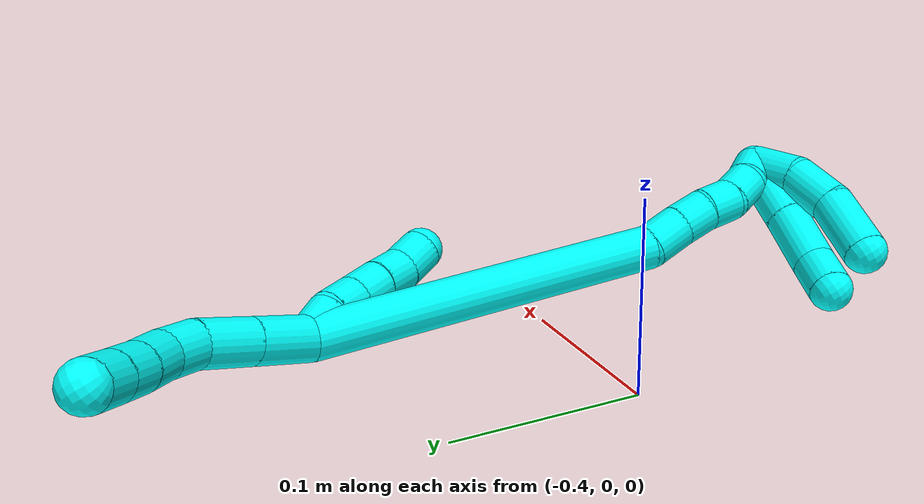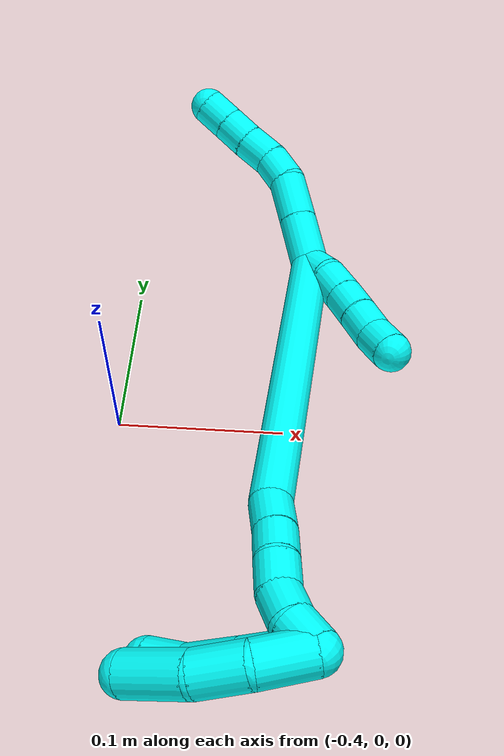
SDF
<sdf version="1.7">
 <world name="default">
  <model name="3">
   <static>0</static>
   <link name="3">
    <collision name="collision-cylinder-e_1_2_8">
     <pose>-0.007303 0.012117 0.010484 -0.857502 -0.427653 0.197871</pose>
     <geometry><cylinder><radius>0.0125</radius><length>0.035218</length></cylinder></geometry>
     <surface>
      <friction><ode><mu>1.16</mu><mu2>1.16</mu2><slip1>0</slip1><slip2>0</slip2></ode></friction>
      <contact><ode><kp>1e+06</kp><kd>1</kd><max_vel>0</max_vel><min_depth>0.001</min_depth></ode></contact>
     </surface>
    </collision>
    <visual name="visual-cylinder-e_1_2_8">
     <pose>-0.007303 0.012117 0.010484 -0.857502 -0.427653 0.197871</pose>
     <geometry><cylinder><radius>0.0125</radius><length>0.035218</length></cylinder></geometry>
     <material><ambient>0.003922 1 0.996078 1</ambient></material>
    </visual>
    <collision name="collision-cylinder-e_2_8_9">
     <pose>-0.021094 0.035096 0.030136 -0.869818 -0.428203 0.201346</pose>
     <geometry><cylinder><radius>0.0125</radius><length>0.031247</length></cylinder></geometry>
     <surface>
      <friction><ode><mu>1.16</mu><mu2>1.16</mu2><slip1>0</slip1><slip2>0</slip2></ode></friction>
      <contact><ode><kp>1e+06</kp><kd>1</kd><max_vel>0</max_vel><min_depth>0.001</min_depth></ode></contact>
     </surface>
    </collision>
    <visual name="visual-cylinder-e_2_8_9">
     <pose>-0.021094 0.035096 0.030136 -0.869818 -0.428203 0.201346</pose>
     <geometry><cylinder><radius>0.0125</radius><length>0.031247</length></cylinder></geometry>
     <material><ambient>0.003922 1 0.996078 1</ambient></material>
    </visual>
    <collision name="collision-cylinder-e_3_9_10">
     <pose>-0.029173 0.055204 0.044732 -1.03985 -0.147401 0.084484</pose>
     <geometry><cylinder><radius>0.0125</radius><length>0.02168</length></cylinder></geometry>
     <surface>
      <friction><ode><mu>1.16</mu><mu2>1.16</mu2><slip1>0</slip1><slip2>0</slip2></ode></friction>
      <contact><ode><kp>1e+06</kp><kd>1</kd><max_vel>0</max_vel><min_depth>0.001</min_depth></ode></contact>
     </surface>
    </collision>
    <visual name="visual-cylinder-e_3_9_10">
     <pose>-0.029173 0.055204 0.044732 -1.03985 -0.147401 0.084484</pose>
     <geometry><cylinder><radius>0.0125</radius><length>0.02168</length></cylinder></geometry>
     <material><ambient>0.003922 1 0.996078 1</ambient></material>
    </visual>
    <collision name="collision-cylinder-e_4_10_11">
     <pose>-0.030952 0.074969 0.0531 -1.29835 -0.017126 0.012997</pose>
     <geometry><cylinder><radius>0.0125</radius><length>0.021846</length></cylinder></geometry>
     <surface>
      <friction><ode><mu>1.16</mu><mu2>1.16</mu2><slip1>0</slip1><slip2>0</slip2></ode></friction>
      <contact><ode><kp>1e+06</kp><kd>1</kd><max_vel>0</max_vel><min_depth>0.001</min_depth></ode></contact>
     </surface>
    </collision>
    <visual name="visual-cylinder-e_4_10_11">
     <pose>-0.030952 0.074969 0.0531 -1.29835 -0.017126 0.012997</pose>
     <geometry><cylinder><radius>0.0125</radius><length>0.021846</length></cylinder></geometry>
     <material><ambient>0.003922 1 0.996078 1</ambient></material>
    </visual>
    <collision name="collision-cylinder-e_5_11_12">
     <pose>-0.031916 0.095144 0.058527 -1.31863 -0.077751 0.060269</pose>
     <geometry><cylinder><radius>0.0125</radius><length>0.020003</length></cylinder></geometry>
     <surface>
      <friction><ode><mu>1.16</mu><mu2>1.16</mu2><slip1>0</slip1><slip2>0</slip2></ode></friction>
      <contact><ode><kp>1e+06</kp><kd>1</kd><max_vel>0</max_vel><min_depth>0.001</min_depth></ode></contact>
     </surface>
    </collision>
    <visual name="visual-cylinder-e_5_11_12">
     <pose>-0.031916 0.095144 0.058527 -1.31863 -0.077751 0.060269</pose>
     <geometry><cylinder><radius>0.0125</radius><length>0.020003</length></cylinder></geometry>
     <material><ambient>0.003922 1 0.996078 1</ambient></material>
    </visual>
    <collision name="collision-cylinder-e_6_12_6">
     <pose>-0.033552 0.114537 0.063137 -1.35622 -0.086002 0.069293</pose>
     <geometry><cylinder><radius>0.0125</radius><length>0.020005</length></cylinder></geometry>
     <surface>
      <friction><ode><mu>1.16</mu><mu2>1.16</mu2><slip1>0</slip1><slip2>0</slip2></ode></friction>
      <contact><ode><kp>1e+06</kp><kd>1</kd><max_vel>0</max_vel><min_depth>0.001</min_depth></ode></contact>
     </surface>
    </collision>
    <visual name="visual-cylinder-e_6_12_6">
     <pose>-0.033552 0.114537 0.063137 -1.35622 -0.086002 0.069293</pose>
     <geometry><cylinder><radius>0.0125</radius><length>0.020005</length></cylinder></geometry>
     <material><ambient>0.003922 1 0.996078 1</ambient></material>
    </visual>
    <collision name="collision-cylinder-e_1_2_13">
     <pose>-0.002736 -0.006944 -0.006656 2.33505 -0.277143 -0.631859</pose>
     <geometry><cylinder><radius>0.0125</radius><length>0.02</length></cylinder></geometry>
     <surface>
      <friction><ode><mu>1.16</mu><mu2>1.16</mu2><slip1>0</slip1><slip2>0</slip2></ode></friction>
      <contact><ode><kp>1e+06</kp><kd>1</kd><max_vel>0</max_vel><min_depth>0.001</min_depth></ode></contact>
     </surface>
    </collision>
    <visual name="visual-cylinder-e_1_2_13">
     <pose>-0.002736 -0.006944 -0.006656 2.33505 -0.277143 -0.631859</pose>
     <geometry><cylinder><radius>0.0125</radius><length>0.02</length></cylinder></geometry>
     <material><ambient>0.003922 1 0.996078 1</ambient></material>
    </visual>
    <collision name="collision-cylinder-e_2_13_14">
     <pose>-0.005457 -0.021628 -0.019642 2.25625 0.001514 0.003195</pose>
     <geometry><cylinder><radius>0.0125</radius><length>0.02</length></cylinder></geometry>
     <surface>
      <friction><ode><mu>1.16</mu><mu2>1.16</mu2><slip1>0</slip1><slip2>0</slip2></ode></friction>
      <contact><ode><kp>1e+06</kp><kd>1</kd><max_vel>0</max_vel><min_depth>0.001</min_depth></ode></contact>
     </surface>
    </collision>
    <visual name="visual-cylinder-e_2_13_14">
     <pose>-0.005457 -0.021628 -0.019642 2.25625 0.001514 0.003195</pose>
     <geometry><cylinder><radius>0.0125</radius><length>0.02</length></cylinder></geometry>
     <material><ambient>0.003922 1 0.996078 1</ambient></material>
    </visual>
    <collision name="collision-cylinder-e_3_14_15">
     <pose>-0.005535 -0.036547 -0.032935 2.34101 -0.009273 -0.021914</pose>
     <geometry><cylinder><radius>0.0125</radius><length>0.02</length></cylinder></geometry>
     <surface>
      <friction><ode><mu>1.16</mu><mu2>1.16</mu2><slip1>0</slip1><slip2>0</slip2></ode></friction>
      <contact><ode><kp>1e+06</kp><kd>1</kd><max_vel>0</max_vel><min_depth>0.001</min_depth></ode></contact>
     </surface>
    </collision>
    <visual name="visual-cylinder-e_3_14_15">
     <pose>-0.005535 -0.036547 -0.032935 2.34101 -0.009273 -0.021914</pose>
     <geometry><cylinder><radius>0.0125</radius><length>0.02</length></cylinder></geometry>
     <material><ambient>0.003922 1 0.996078 1</ambient></material>
    </visual>
    <collision name="collision-cylinder-e_4_15_16">
     <pose>-0.005311 -0.051223 -0.046506 2.29313 0.031609 0.069961</pose>
     <geometry><cylinder><radius>0.0125</radius><length>0.02</length></cylinder></geometry>
     <surface>
      <friction><ode><mu>1.16</mu><mu2>1.16</mu2><slip1>0</slip1><slip2>0</slip2></ode></friction>
      <contact><ode><kp>1e+06</kp><kd>1</kd><max_vel>0</max_vel><min_depth>0.001</min_depth></ode></contact>
     </surface>
    </collision>
    <visual name="visual-cylinder-e_4_15_16">
     <pose>-0.005311 -0.051223 -0.046506 2.29313 0.031609 0.069961</pose>
     <geometry><cylinder><radius>0.0125</radius><length>0.02</length></cylinder></geometry>
     <material><ambient>0.003922 1 0.996078 1</ambient></material>
    </visual>
    <collision name="collision-cylinder-e_5_16_5">
     <pose>-0.006571 -0.065308 -0.060471 2.41146 -0.158243 -0.409099</pose>
     <geometry><cylinder><radius>0.0125</radius><length>0.02</length></cylinder></geometry>
     <surface>
      <friction><ode><mu>1.16</mu><mu2>1.16</mu2><slip1>0</slip1><slip2>0</slip2></ode></friction>
      <contact><ode><kp>1e+06</kp><kd>1</kd><max_vel>0</max_vel><min_depth>0.001</min_depth></ode></contact>
     </surface>
    </collision>
    <visual name="visual-cylinder-e_5_16_5">
     <pose>-0.006571 -0.065308 -0.060471 2.41146 -0.158243 -0.409099</pose>
     <geometry><cylinder><radius>0.0125</radius><length>0.02</length></cylinder></geometry>
     <material><ambient>0.003922 1 0.996078 1</ambient></material>
    </visual>
    <collision name="collision-cylinder-e_1_2_17">
     <pose>0.029444 -0.028429 -0.089382 2.83365 0.304183 1.55832</pose>
     <geometry><cylinder><radius>0.0125</radius><length>0.196615</length></cylinder></geometry>
     <surface>
      <friction><ode><mu>1.16</mu><mu2>1.16</mu2><slip1>0</slip1><slip2>0</slip2></ode></friction>
      <contact><ode><kp>1e+06</kp><kd>1</kd><max_vel>0</max_vel><min_depth>0.001</min_depth></ode></contact>
     </surface>
    </collision>
    <visual name="visual-cylinder-e_1_2_17">
     <pose>0.029444 -0.028429 -0.089382 2.83365 0.304183 1.55832</pose>
     <geometry><cylinder><radius>0.0125</radius><length>0.196615</length></cylinder></geometry>
     <material><ambient>0.003922 1 0.996078 1</ambient></material>
    </visual>
    <collision name="collision-cylinder-e_2_17_18">
     <pose>0.058729 -0.061459 -0.18942 2.73395 -0.013789 -0.066688</pose>
     <geometry><cylinder><radius>0.0125</radius><length>0.023216</length></cylinder></geometry>
     <surface>
      <friction><ode><mu>1.16</mu><mu2>1.16</mu2><slip1>0</slip1><slip2>0</slip2></ode></friction>
      <contact><ode><kp>1e+06</kp><kd>1</kd><max_vel>0</max_vel><min_depth>0.001</min_depth></ode></contact>
     </surface>
    </collision>
    <visual name="visual-cylinder-e_2_17_18">
     <pose>0.058729 -0.061459 -0.18942 2.73395 -0.013789 -0.066688</pose>
     <geometry><cylinder><radius>0.0125</radius><length>0.023216</length></cylinder></geometry>
     <material><ambient>0.003922 1 0.996078 1</ambient></material>
    </visual>
    <collision name="collision-cylinder-e_3_18_19">
     <pose>0.058975 -0.069547 -0.209465 2.78606 0.040537 0.224711</pose>
     <geometry><cylinder><radius>0.0125</radius><length>0.020047</length></cylinder></geometry>
     <surface>
      <friction><ode><mu>1.16</mu><mu2>1.16</mu2><slip1>0</slip1><slip2>0</slip2></ode></friction>
      <contact><ode><kp>1e+06</kp><kd>1</kd><max_vel>0</max_vel><min_depth>0.001</min_depth></ode></contact>
     </surface>
    </collision>
    <visual name="visual-cylinder-e_3_18_19">
     <pose>0.058975 -0.069547 -0.209465 2.78606 0.040537 0.224711</pose>
     <geometry><cylinder><radius>0.0125</radius><length>0.020047</length></cylinder></geometry>
     <material><ambient>0.003922 1 0.996078 1</ambient></material>
    </visual>
    <collision name="collision-cylinder-e_4_19_20">
     <pose>0.061209 -0.077386 -0.22769 2.68384 0.183466 0.752172</pose>
     <geometry><cylinder><radius>0.0125</radius><length>0.020036</length></cylinder></geometry>
     <surface>
      <friction><ode><mu>1.16</mu><mu2>1.16</mu2><slip1>0</slip1><slip2>0</slip2></ode></friction>
      <contact><ode><kp>1e+06</kp><kd>1</kd><max_vel>0</max_vel><min_depth>0.001</min_depth></ode></contact>
     </surface>
    </collision>
    <visual name="visual-cylinder-e_4_19_20">
     <pose>0.061209 -0.077386 -0.22769 2.68384 0.183466 0.752172</pose>
     <geometry><cylinder><radius>0.0125</radius><length>0.020036</length></cylinder></geometry>
     <material><ambient>0.003922 1 0.996078 1</ambient></material>
    </visual>
    <collision name="collision-cylinder-e_5_20_21">
     <pose>0.061847 -0.087355 -0.244743 2.5421 -0.118985 -0.380781</pose>
     <geometry><cylinder><radius>0.0125</radius><length>0.020048</length></cylinder></geometry>
     <surface>
      <friction><ode><mu>1.16</mu><mu2>1.16</mu2><slip1>0</slip1><slip2>0</slip2></ode></friction>
      <contact><ode><kp>1e+06</kp><kd>1</kd><max_vel>0</max_vel><min_depth>0.001</min_depth></ode></contact>
     </surface>
    </collision>
    <visual name="visual-cylinder-e_5_20_21">
     <pose>0.061847 -0.087355 -0.244743 2.5421 -0.118985 -0.380781</pose>
     <geometry><cylinder><radius>0.0125</radius><length>0.020048</length></cylinder></geometry>
     <material><ambient>0.003922 1 0.996078 1</ambient></material>
    </visual>
    <collision name="collision-cylinder-e_6_21_1">
     <pose>0.058745 -0.100599 -0.259168 2.2538 -0.192027 -0.399644</pose>
     <geometry><cylinder><radius>0.0125</radius><length>0.020038</length></cylinder></geometry>
     <surface>
      <friction><ode><mu>1.16</mu><mu2>1.16</mu2><slip1>0</slip1><slip2>0</slip2></ode></friction>
      <contact><ode><kp>1e+06</kp><kd>1</kd><max_vel>0</max_vel><min_depth>0.001</min_depth></ode></contact>
     </surface>
    </collision>
    <visual name="visual-cylinder-e_6_21_1">
     <pose>0.058745 -0.100599 -0.259168 2.2538 -0.192027 -0.399644</pose>
     <geometry><cylinder><radius>0.0125</radius><length>0.020038</length></cylinder></geometry>
     <material><ambient>0.003922 1 0.996078 1</ambient></material>
    </visual>
    <collision name="collision-cylinder-e_1_1_22">
     <pose>0.073601 -0.096186 -0.263042 -1.37947 0.939234 -0.792909</pose>
     <geometry><cylinder><radius>0.0125</radius><length>0.041552</length></cylinder></geometry>
     <surface>
      <friction><ode><mu>1.16</mu><mu2>1.16</mu2><slip1>0</slip1><slip2>0</slip2></ode></friction>
      <contact><ode><kp>1e+06</kp><kd>1</kd><max_vel>0</max_vel><min_depth>0.001</min_depth></ode></contact>
     </surface>
    </collision>
    <visual name="visual-cylinder-e_1_1_22">
     <pose>0.073601 -0.096186 -0.263042 -1.37947 0.939234 -0.792909</pose>
     <geometry><cylinder><radius>0.0125</radius><length>0.041552</length></cylinder></geometry>
     <material><ambient>0.003922 1 0.996078 1</ambient></material>
    </visual>
    <collision name="collision-cylinder-e_2_22_23">
     <pose>0.104465 -0.074068 -0.258338 -1.33961 0.93742 -0.762724</pose>
     <geometry><cylinder><radius>0.0125</radius><length>0.034975</length></cylinder></geometry>
     <surface>
      <friction><ode><mu>1.16</mu><mu2>1.16</mu2><slip1>0</slip1><slip2>0</slip2></ode></friction>
      <contact><ode><kp>1e+06</kp><kd>1</kd><max_vel>0</max_vel><min_depth>0.001</min_depth></ode></contact>
     </surface>
    </collision>
    <visual name="visual-cylinder-e_2_22_23">
     <pose>0.104465 -0.074068 -0.258338 -1.33961 0.93742 -0.762724</pose>
     <geometry><cylinder><radius>0.0125</radius><length>0.034975</length></cylinder></geometry>
     <material><ambient>0.003922 1 0.996078 1</ambient></material>
    </visual>
    <collision name="collision-cylinder-e_3_23_4">
     <pose>0.125495 -0.054717 -0.254069 -1.36903 0.632106 -0.52163</pose>
     <geometry><cylinder><radius>0.0125</radius><length>0.023473</length></cylinder></geometry>
     <surface>
      <friction><ode><mu>1.16</mu><mu2>1.16</mu2><slip1>0</slip1><slip2>0</slip2></ode></friction>
      <contact><ode><kp>1e+06</kp><kd>1</kd><max_vel>0</max_vel><min_depth>0.001</min_depth></ode></contact>
     </surface>
    </collision>
    <visual name="visual-cylinder-e_3_23_4">
     <pose>0.125495 -0.054717 -0.254069 -1.36903 0.632106 -0.52163</pose>
     <geometry><cylinder><radius>0.0125</radius><length>0.023473</length></cylinder></geometry>
     <material><ambient>0.003922 1 0.996078 1</ambient></material>
    </visual>
    <collision name="collision-cylinder-e_1_1_24">
     <pose>0.06536 -0.096798 -0.272002 -2.09624 0.573112 -0.945559</pose>
     <geometry><cylinder><radius>0.0125</radius><length>0.031451</length></cylinder></geometry>
     <surface>
      <friction><ode><mu>1.16</mu><mu2>1.16</mu2><slip1>0</slip1><slip2>0</slip2></ode></friction>
      <contact><ode><kp>1e+06</kp><kd>1</kd><max_vel>0</max_vel><min_depth>0.001</min_depth></ode></contact>
     </surface>
    </collision>
    <visual name="visual-cylinder-e_1_1_24">
     <pose>0.06536 -0.096798 -0.272002 -2.09624 0.573112 -0.945559</pose>
     <geometry><cylinder><radius>0.0125</radius><length>0.031451</length></cylinder></geometry>
     <material><ambient>0.003922 1 0.996078 1</ambient></material>
    </visual>
    <collision name="collision-cylinder-e_2_24_25">
     <pose>0.084465 -0.075268 -0.280702 -1.77316 0.798244 -0.95443</pose>
     <geometry><cylinder><radius>0.0125</radius><length>0.029542</length></cylinder></geometry>
     <surface>
      <friction><ode><mu>1.16</mu><mu2>1.16</mu2><slip1>0</slip1><slip2>0</slip2></ode></friction>
      <contact><ode><kp>1e+06</kp><kd>1</kd><max_vel>0</max_vel><min_depth>0.001</min_depth></ode></contact>
     </surface>
    </collision>
    <visual name="visual-cylinder-e_2_24_25">
     <pose>0.084465 -0.075268 -0.280702 -1.77316 0.798244 -0.95443</pose>
     <geometry><cylinder><radius>0.0125</radius><length>0.029542</length></cylinder></geometry>
     <material><ambient>0.003922 1 0.996078 1</ambient></material>
    </visual>
    <collision name="collision-cylinder-e_3_25_3">
     <pose>0.109114 -0.051884 -0.280347 -1.39011 0.805971 -0.683117</pose>
     <geometry><cylinder><radius>0.0125</radius><length>0.039007</length></cylinder></geometry>
     <surface>
      <friction><ode><mu>1.16</mu><mu2>1.16</mu2><slip1>0</slip1><slip2>0</slip2></ode></friction>
      <contact><ode><kp>1e+06</kp><kd>1</kd><max_vel>0</max_vel><min_depth>0.001</min_depth></ode></contact>
     </surface>
    </collision>
    <visual name="visual-cylinder-e_3_25_3">
     <pose>0.109114 -0.051884 -0.280347 -1.39011 0.805971 -0.683117</pose>
     <geometry><cylinder><radius>0.0125</radius><length>0.039007</length></cylinder></geometry>
     <material><ambient>0.003922 1 0.996078 1</ambient></material>
    </visual>
    <collision name="collision-sphere-3">
     <pose>0.123186 -0.0386 -0.27792 0 -0 0</pose>
     <geometry><sphere><radius>0.0125</radius></sphere></geometry>
     <surface>
      <friction><ode><mu>1.16</mu><mu2>1.16</mu2><slip1>0</slip1><slip2>0</slip2></ode></friction>
      <contact><ode><kp>1e+06</kp><kd>1</kd><max_vel>0</max_vel><min_depth>0.001</min_depth></ode></contact>
     </surface>
    </collision>
    <visual name="visual-sphere-3">
     <pose>0.123186 -0.0386 -0.27792 0 -0 0</pose>
     <geometry><sphere><radius>0.0125</radius></sphere></geometry>
     <material><ambient>0.003922 1 0.996078 1</ambient></material>
    </visual>
    <collision name="collision-sphere-25">
     <pose>0.095042 -0.065169 -0.282774 0 -0 0</pose>
     <geometry><sphere><radius>0.0125</radius></sphere></geometry>
     <surface>
      <friction><ode><mu>1.16</mu><mu2>1.16</mu2><slip1>0</slip1><slip2>0</slip2></ode></friction>
      <contact><ode><kp>1e+06</kp><kd>1</kd><max_vel>0</max_vel><min_depth>0.001</min_depth></ode></contact>
     </surface>
    </collision>
    <visual name="visual-sphere-25">
     <pose>0.095042 -0.065169 -0.282774 0 -0 0</pose>
     <geometry><sphere><radius>0.0125</radius></sphere></geometry>
     <material><ambient>0.003922 1 0.996078 1</ambient></material>
    </visual>
    <collision name="collision-sphere-24">
     <pose>0.073887 -0.085367 -0.27863 0 -0 0</pose>
     <geometry><sphere><radius>0.0125</radius></sphere></geometry>
     <surface>
      <friction><ode><mu>1.16</mu><mu2>1.16</mu2><slip1>0</slip1><slip2>0</slip2></ode></friction>
      <contact><ode><kp>1e+06</kp><kd>1</kd><max_vel>0</max_vel><min_depth>0.001</min_depth></ode></contact>
     </surface>
    </collision>
    <visual name="visual-sphere-24">
     <pose>0.073887 -0.085367 -0.27863 0 -0 0</pose>
     <geometry><sphere><radius>0.0125</radius></sphere></geometry>
     <material><ambient>0.003922 1 0.996078 1</ambient></material>
    </visual>
    <collision name="collision-sphere-4">
     <pose>0.132429 -0.04544 -0.252171 0 -0 0</pose>
     <geometry><sphere><radius>0.0125</radius></sphere></geometry>
     <surface>
      <friction><ode><mu>1.16</mu><mu2>1.16</mu2><slip1>0</slip1><slip2>0</slip2></ode></friction>
      <contact><ode><kp>1e+06</kp><kd>1</kd><max_vel>0</max_vel><min_depth>0.001</min_depth></ode></contact>
     </surface>
    </collision>
    <visual name="visual-sphere-4">
     <pose>0.132429 -0.04544 -0.252171 0 -0 0</pose>
     <geometry><sphere><radius>0.0125</radius></sphere></geometry>
     <material><ambient>0.003922 1 0.996078 1</ambient></material>
    </visual>
    <collision name="collision-sphere-23">
     <pose>0.11856 -0.063993 -0.255966 0 -0 0</pose>
     <geometry><sphere><radius>0.0125</radius></sphere></geometry>
     <surface>
      <friction><ode><mu>1.16</mu><mu2>1.16</mu2><slip1>0</slip1><slip2>0</slip2></ode></friction>
      <contact><ode><kp>1e+06</kp><kd>1</kd><max_vel>0</max_vel><min_depth>0.001</min_depth></ode></contact>
     </surface>
    </collision>
    <visual name="visual-sphere-23">
     <pose>0.11856 -0.063993 -0.255966 0 -0 0</pose>
     <geometry><sphere><radius>0.0125</radius></sphere></geometry>
     <material><ambient>0.003922 1 0.996078 1</ambient></material>
    </visual>
    <collision name="collision-sphere-22">
     <pose>0.090369 -0.084143 -0.26071 0 -0 0</pose>
     <geometry><sphere><radius>0.0125</radius></sphere></geometry>
     <surface>
      <friction><ode><mu>1.16</mu><mu2>1.16</mu2><slip1>0</slip1><slip2>0</slip2></ode></friction>
      <contact><ode><kp>1e+06</kp><kd>1</kd><max_vel>0</max_vel><min_depth>0.001</min_depth></ode></contact>
     </surface>
    </collision>
    <visual name="visual-sphere-22">
     <pose>0.090369 -0.084143 -0.26071 0 -0 0</pose>
     <geometry><sphere><radius>0.0125</radius></sphere></geometry>
     <material><ambient>0.003922 1 0.996078 1</ambient></material>
    </visual>
    <collision name="collision-sphere-1">
     <pose>0.056832 -0.108228 -0.265375 0 -0 0</pose>
     <geometry><sphere><radius>0.0125</radius></sphere></geometry>
     <surface>
      <friction><ode><mu>1.16</mu><mu2>1.16</mu2><slip1>0</slip1><slip2>0</slip2></ode></friction>
      <contact><ode><kp>1e+06</kp><kd>1</kd><max_vel>0</max_vel><min_depth>0.001</min_depth></ode></contact>
     </surface>
    </collision>
    <visual name="visual-sphere-1">
     <pose>0.056832 -0.108228 -0.265375 0 -0 0</pose>
     <geometry><sphere><radius>0.0125</radius></sphere></geometry>
     <material><ambient>0.003922 1 0.996078 1</ambient></material>
    </visual>
    <collision name="collision-sphere-21">
     <pose>0.060657 -0.092971 -0.252961 0 -0 0</pose>
     <geometry><sphere><radius>0.0125</radius></sphere></geometry>
     <surface>
      <friction><ode><mu>1.16</mu><mu2>1.16</mu2><slip1>0</slip1><slip2>0</slip2></ode></friction>
      <contact><ode><kp>1e+06</kp><kd>1</kd><max_vel>0</max_vel><min_depth>0.001</min_depth></ode></contact>
     </surface>
    </collision>
    <visual name="visual-sphere-21">
     <pose>0.060657 -0.092971 -0.252961 0 -0 0</pose>
     <geometry><sphere><radius>0.0125</radius></sphere></geometry>
     <material><ambient>0.003922 1 0.996078 1</ambient></material>
    </visual>
    <collision name="collision-sphere-12">
     <pose>-0.032693 0.1048 0.061015 0 -0 0</pose>
     <geometry><sphere><radius>0.0125</radius></sphere></geometry>
     <surface>
      <friction><ode><mu>1.16</mu><mu2>1.16</mu2><slip1>0</slip1><slip2>0</slip2></ode></friction>
      <contact><ode><kp>1e+06</kp><kd>1</kd><max_vel>0</max_vel><min_depth>0.001</min_depth></ode></contact>
     </surface>
    </collision>
    <visual name="visual-sphere-12">
     <pose>-0.032693 0.1048 0.061015 0 -0 0</pose>
     <geometry><sphere><radius>0.0125</radius></sphere></geometry>
     <material><ambient>0.003922 1 0.996078 1</ambient></material>
    </visual>
    <collision name="collision-sphere-11">
     <pose>-0.031139 0.085487 0.056039 0 -0 0</pose>
     <geometry><sphere><radius>0.0125</radius></sphere></geometry>
     <surface>
      <friction><ode><mu>1.16</mu><mu2>1.16</mu2><slip1>0</slip1><slip2>0</slip2></ode></friction>
      <contact><ode><kp>1e+06</kp><kd>1</kd><max_vel>0</max_vel><min_depth>0.001</min_depth></ode></contact>
     </surface>
    </collision>
    <visual name="visual-sphere-11">
     <pose>-0.031139 0.085487 0.056039 0 -0 0</pose>
     <geometry><sphere><radius>0.0125</radius></sphere></geometry>
     <material><ambient>0.003922 1 0.996078 1</ambient></material>
    </visual>
    <collision name="collision-sphere-10">
     <pose>-0.030765 0.06445 0.050162 0 -0 0</pose>
     <geometry><sphere><radius>0.0125</radius></sphere></geometry>
     <surface>
      <friction><ode><mu>1.16</mu><mu2>1.16</mu2><slip1>0</slip1><slip2>0</slip2></ode></friction>
      <contact><ode><kp>1e+06</kp><kd>1</kd><max_vel>0</max_vel><min_depth>0.001</min_depth></ode></contact>
     </surface>
    </collision>
    <visual name="visual-sphere-10">
     <pose>-0.030765 0.06445 0.050162 0 -0 0</pose>
     <geometry><sphere><radius>0.0125</radius></sphere></geometry>
     <material><ambient>0.003922 1 0.996078 1</ambient></material>
    </visual>
    <collision name="collision-sphere-9">
     <pose>-0.027581 0.045957 0.039303 0 -0 0</pose>
     <geometry><sphere><radius>0.0125</radius></sphere></geometry>
     <surface>
      <friction><ode><mu>1.16</mu><mu2>1.16</mu2><slip1>0</slip1><slip2>0</slip2></ode></friction>
      <contact><ode><kp>1e+06</kp><kd>1</kd><max_vel>0</max_vel><min_depth>0.001</min_depth></ode></contact>
     </surface>
    </collision>
    <visual name="visual-sphere-9">
     <pose>-0.027581 0.045957 0.039303 0 -0 0</pose>
     <geometry><sphere><radius>0.0125</radius></sphere></geometry>
     <material><ambient>0.003922 1 0.996078 1</ambient></material>
    </visual>
    <collision name="collision-sphere-2">
     <geometry><sphere><radius>0.0125</radius></sphere></geometry>
     <surface>
      <friction><ode><mu>1.16</mu><mu2>1.16</mu2><slip1>0</slip1><slip2>0</slip2></ode></friction>
      <contact><ode><kp>1e+06</kp><kd>1</kd><max_vel>0</max_vel><min_depth>0.001</min_depth></ode></contact>
     </surface>
    </collision>
    <visual name="visual-sphere-2">
     <geometry><sphere><radius>0.0125</radius></sphere></geometry>
     <material><ambient>0.003922 1 0.996078 1</ambient></material>
    </visual>
    <collision name="collision-sphere-19">
     <pose>0.059381 -0.073033 -0.218854 0 -0 0</pose>
     <geometry><sphere><radius>0.0125</radius></sphere></geometry>
     <surface>
      <friction><ode><mu>1.16</mu><mu2>1.16</mu2><slip1>0</slip1><slip2>0</slip2></ode></friction>
      <contact><ode><kp>1e+06</kp><kd>1</kd><max_vel>0</max_vel><min_depth>0.001</min_depth></ode></contact>
     </surface>
    </collision>
    <visual name="visual-sphere-19">
     <pose>0.059381 -0.073033 -0.218854 0 -0 0</pose>
     <geometry><sphere><radius>0.0125</radius></sphere></geometry>
     <material><ambient>0.003922 1 0.996078 1</ambient></material>
    </visual>
    <collision name="collision-sphere-8">
     <pose>-0.014606 0.024234 0.020969 0 -0 0</pose>
     <geometry><sphere><radius>0.0125</radius></sphere></geometry>
     <surface>
      <friction><ode><mu>1.16</mu><mu2>1.16</mu2><slip1>0</slip1><slip2>0</slip2></ode></friction>
      <contact><ode><kp>1e+06</kp><kd>1</kd><max_vel>0</max_vel><min_depth>0.001</min_depth></ode></contact>
     </surface>
    </collision>
    <visual name="visual-sphere-8">
     <pose>-0.014606 0.024234 0.020969 0 -0 0</pose>
     <geometry><sphere><radius>0.0125</radius></sphere></geometry>
     <material><ambient>0.003922 1 0.996078 1</ambient></material>
    </visual>
    <collision name="collision-sphere-6">
     <pose>-0.034412 0.124273 0.065259 0 -0 0</pose>
     <geometry><sphere><radius>0.0125</radius></sphere></geometry>
     <surface>
      <friction><ode><mu>1.16</mu><mu2>1.16</mu2><slip1>0</slip1><slip2>0</slip2></ode></friction>
      <contact><ode><kp>1e+06</kp><kd>1</kd><max_vel>0</max_vel><min_depth>0.001</min_depth></ode></contact>
     </surface>
    </collision>
    <visual name="visual-sphere-6">
     <pose>-0.034412 0.124273 0.065259 0 -0 0</pose>
     <geometry><sphere><radius>0.0125</radius></sphere></geometry>
     <material><ambient>0.003922 1 0.996078 1</ambient></material>
    </visual>
    <collision name="collision-sphere-13">
     <pose>-0.005472 -0.013887 -0.013312 0 -0 0</pose>
     <geometry><sphere><radius>0.0125</radius></sphere></geometry>
     <surface>
      <friction><ode><mu>1.16</mu><mu2>1.16</mu2><slip1>0</slip1><slip2>0</slip2></ode></friction>
      <contact><ode><kp>1e+06</kp><kd>1</kd><max_vel>0</max_vel><min_depth>0.001</min_depth></ode></contact>
     </surface>
    </collision>
    <visual name="visual-sphere-13">
     <pose>-0.005472 -0.013887 -0.013312 0 -0 0</pose>
     <geometry><sphere><radius>0.0125</radius></sphere></geometry>
     <material><ambient>0.003922 1 0.996078 1</ambient></material>
    </visual>
    <collision name="collision-sphere-14">
     <pose>-0.005442 -0.02937 -0.025972 0 -0 0</pose>
     <geometry><sphere><radius>0.0125</radius></sphere></geometry>
     <surface>
      <friction><ode><mu>1.16</mu><mu2>1.16</mu2><slip1>0</slip1><slip2>0</slip2></ode></friction>
      <contact><ode><kp>1e+06</kp><kd>1</kd><max_vel>0</max_vel><min_depth>0.001</min_depth></ode></contact>
     </surface>
    </collision>
    <visual name="visual-sphere-14">
     <pose>-0.005442 -0.02937 -0.025972 0 -0 0</pose>
     <geometry><sphere><radius>0.0125</radius></sphere></geometry>
     <material><ambient>0.003922 1 0.996078 1</ambient></material>
    </visual>
    <collision name="collision-sphere-15">
     <pose>-0.005627 -0.043724 -0.039897 0 -0 0</pose>
     <geometry><sphere><radius>0.0125</radius></sphere></geometry>
     <surface>
      <friction><ode><mu>1.16</mu><mu2>1.16</mu2><slip1>0</slip1><slip2>0</slip2></ode></friction>
      <contact><ode><kp>1e+06</kp><kd>1</kd><max_vel>0</max_vel><min_depth>0.001</min_depth></ode></contact>
     </surface>
    </collision>
    <visual name="visual-sphere-15">
     <pose>-0.005627 -0.043724 -0.039897 0 -0 0</pose>
     <geometry><sphere><radius>0.0125</radius></sphere></geometry>
     <material><ambient>0.003922 1 0.996078 1</ambient></material>
    </visual>
    <collision name="collision-sphere-16">
     <pose>-0.004995 -0.058722 -0.053114 0 -0 0</pose>
     <geometry><sphere><radius>0.0125</radius></sphere></geometry>
     <surface>
      <friction><ode><mu>1.16</mu><mu2>1.16</mu2><slip1>0</slip1><slip2>0</slip2></ode></friction>
      <contact><ode><kp>1e+06</kp><kd>1</kd><max_vel>0</max_vel><min_depth>0.001</min_depth></ode></contact>
     </surface>
    </collision>
    <visual name="visual-sphere-16">
     <pose>-0.004995 -0.058722 -0.053114 0 -0 0</pose>
     <geometry><sphere><radius>0.0125</radius></sphere></geometry>
     <material><ambient>0.003922 1 0.996078 1</ambient></material>
    </visual>
    <collision name="collision-sphere-5">
     <pose>-0.008147 -0.071895 -0.067829 0 -0 0</pose>
     <geometry><sphere><radius>0.0125</radius></sphere></geometry>
     <surface>
      <friction><ode><mu>1.16</mu><mu2>1.16</mu2><slip1>0</slip1><slip2>0</slip2></ode></friction>
      <contact><ode><kp>1e+06</kp><kd>1</kd><max_vel>0</max_vel><min_depth>0.001</min_depth></ode></contact>
     </surface>
    </collision>
    <visual name="visual-sphere-5">
     <pose>-0.008147 -0.071895 -0.067829 0 -0 0</pose>
     <geometry><sphere><radius>0.0125</radius></sphere></geometry>
     <material><ambient>0.003922 1 0.996078 1</ambient></material>
    </visual>
    <collision name="collision-sphere-17">
     <pose>0.058889 -0.056858 -0.178764 0 -0 0</pose>
     <geometry><sphere><radius>0.0125</radius></sphere></geometry>
     <surface>
      <friction><ode><mu>1.16</mu><mu2>1.16</mu2><slip1>0</slip1><slip2>0</slip2></ode></friction>
      <contact><ode><kp>1e+06</kp><kd>1</kd><max_vel>0</max_vel><min_depth>0.001</min_depth></ode></contact>
     </surface>
    </collision>
    <visual name="visual-sphere-17">
     <pose>0.058889 -0.056858 -0.178764 0 -0 0</pose>
     <geometry><sphere><radius>0.0125</radius></sphere></geometry>
     <material><ambient>0.003922 1 0.996078 1</ambient></material>
    </visual>
    <collision name="collision-sphere-18">
     <pose>0.058569 -0.066061 -0.200076 0 -0 0</pose>
     <geometry><sphere><radius>0.0125</radius></sphere></geometry>
     <surface>
      <friction><ode><mu>1.16</mu><mu2>1.16</mu2><slip1>0</slip1><slip2>0</slip2></ode></friction>
      <contact><ode><kp>1e+06</kp><kd>1</kd><max_vel>0</max_vel><min_depth>0.001</min_depth></ode></contact>
     </surface>
    </collision>
    <visual name="visual-sphere-18">
     <pose>0.058569 -0.066061 -0.200076 0 -0 0</pose>
     <geometry><sphere><radius>0.0125</radius></sphere></geometry>
     <material><ambient>0.003922 1 0.996078 1</ambient></material>
    </visual>
    <collision name="collision-sphere-20">
     <pose>0.063037 -0.081739 -0.236525 0 -0 0</pose>
     <geometry><sphere><radius>0.0125</radius></sphere></geometry>
     <surface>
      <friction><ode><mu>1.16</mu><mu2>1.16</mu2><slip1>0</slip1><slip2>0</slip2></ode></friction>
      <contact><ode><kp>1e+06</kp><kd>1</kd><max_vel>0</max_vel><min_depth>0.001</min_depth></ode></contact>
     </surface>
    </collision>
    <visual name="visual-sphere-20">
     <pose>0.063037 -0.081739 -0.236525 0 -0 0</pose>
     <geometry><sphere><radius>0.0125</radius></sphere></geometry>
     <material><ambient>0.003922 1 0.996078 1</ambient></material>
    </visual>
    <inertial>
     <pose>0.035195 -0.031963 -0.122659 0 -0 0</pose>
     <mass>0.75</mass>
     <inertia>
      <ixx>0.00066</ixx>
      <ixy>0</ixy>
      <ixz>0</ixz>
      <iyy>0.000669</iyy>
      <iyz>0</iyz>
      <izz>-6.4e-05</izz>
     </inertia>
    </inertial>
   </link>
   <pose>-0.288622 0.128066 0.011784 2.56158 0.949047 -2.4842</pose>
  </model>
 </world>
</sdf>
